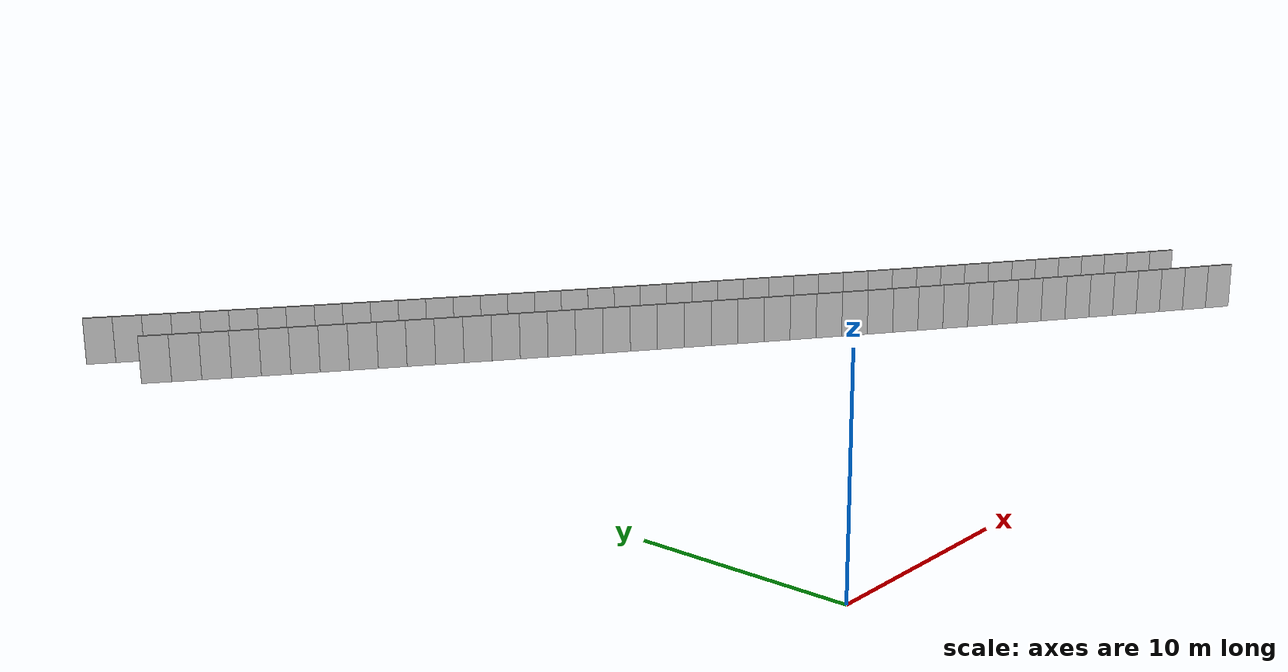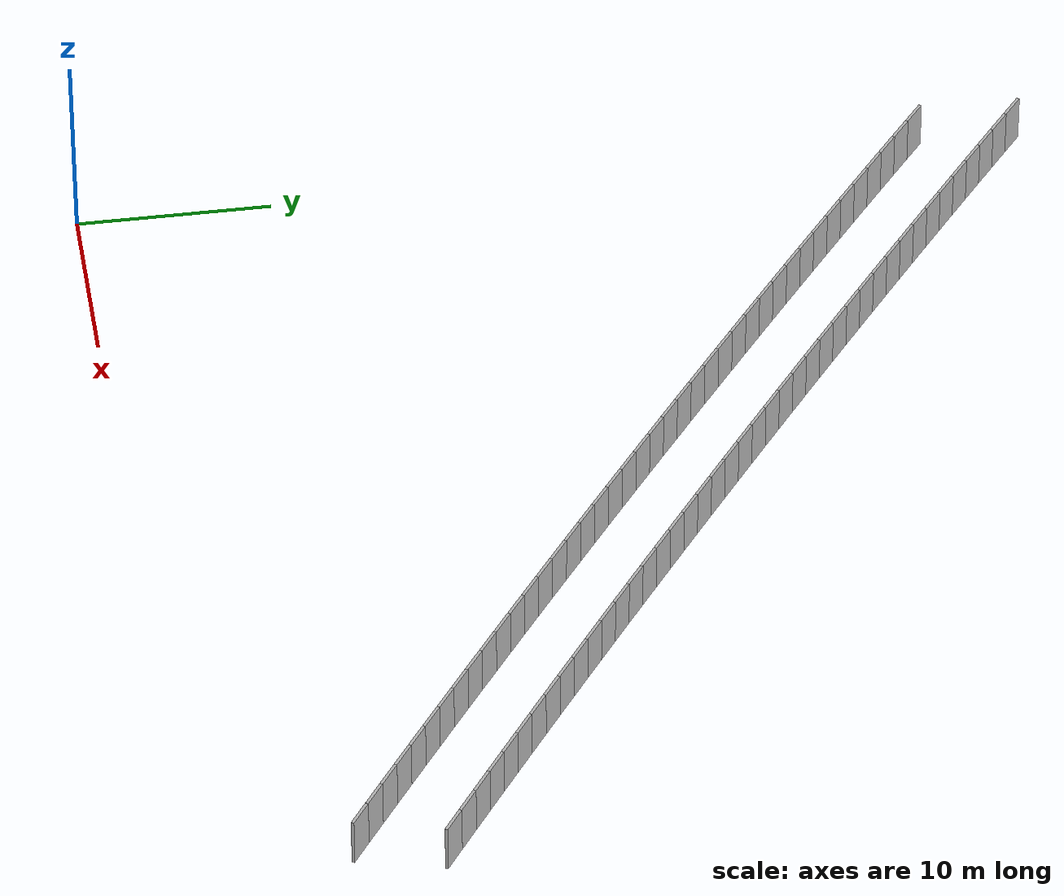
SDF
<?xml version="1.0" ?>
<sdf version="1.6">
  <model name="sps_1107">
    <pose frame="">0 0 0 0 -0 0</pose>
    <static>1</static>
    <self_collide>0</self_collide>
    <allow_auto_disable>0</allow_auto_disable>
    <link name="Wall8591">
      <kinematic>0</kinematic>
      <gravity>1</gravity>
      <self_collide>0</self_collide>
      <collision name="collision">
        <geometry>
          <box>
            <size>1.49901 0.15 2.5</size>
          </box>
        </geometry>
        <pose frame="">0 0 0 0 -0 0</pose>
      </collision>
      <visual name="visual">
        <geometry>
          <box>
            <size>1.49901 0.15 2.5</size>
          </box>
        </geometry>
        <pose frame="">0 0 0 0 -0 0</pose>
        <cast_shadows>1</cast_shadows>
        <transparency>0.0</transparency>
      </visual>
      <pose frame="">0.44506 43.3343 1.25 0 0 -0.661132</pose>
    </link>
    <link name="Wall8592">
      <kinematic>0</kinematic>
      <gravity>1</gravity>
      <self_collide>0</self_collide>
      <collision name="collision">
        <geometry>
          <box>
            <size>1.49874 0.15 2.5</size>
          </box>
        </geometry>
        <pose frame="">0 0 0 0 -0 0</pose>
      </collision>
      <visual name="visual">
        <geometry>
          <box>
            <size>1.49874 0.15 2.5</size>
          </box>
        </geometry>
        <pose frame="">0 0 0 0 -0 0</pose>
        <cast_shadows>1</cast_shadows>
        <transparency>0.0</transparency>
      </visual>
      <pose frame="">1.62884 42.4149 1.25 0 0 -0.659572</pose>
    </link>
    <link name="Wall8593">
      <kinematic>0</kinematic>
      <gravity>1</gravity>
      <self_collide>0</self_collide>
      <collision name="collision">
        <geometry>
          <box>
            <size>1.49896 0.15 2.5</size>
          </box>
        </geometry>
        <pose frame="">0 0 0 0 -0 0</pose>
      </collision>
      <visual name="visual">
        <geometry>
          <box>
            <size>1.49896 0.15 2.5</size>
          </box>
        </geometry>
        <pose frame="">0 0 0 0 -0 0</pose>
        <cast_shadows>1</cast_shadows>
        <transparency>0.0</transparency>
      </visual>
      <pose frame="">2.81405 41.4974 1.25 0 0 -0.657965</pose>
    </link>
    <link name="Wall8594">
      <kinematic>0</kinematic>
      <gravity>1</gravity>
      <self_collide>0</self_collide>
      <collision name="collision">
        <geometry>
          <box>
            <size>1.49905 0.15 2.5</size>
          </box>
        </geometry>
        <pose frame="">0 0 0 0 -0 0</pose>
      </collision>
      <visual name="visual">
        <geometry>
          <box>
            <size>1.49905 0.15 2.5</size>
          </box>
        </geometry>
        <pose frame="">0 0 0 0 -0 0</pose>
        <cast_shadows>1</cast_shadows>
        <transparency>0.0</transparency>
      </visual>
      <pose frame="">4.00085 40.5817 1.25 0 0 -0.656376</pose>
    </link>
    <link name="Wall8595">
      <kinematic>0</kinematic>
      <gravity>1</gravity>
      <self_collide>0</self_collide>
      <collision name="collision">
        <geometry>
          <box>
            <size>1.49898 0.15 2.5</size>
          </box>
        </geometry>
        <pose frame="">0 0 0 0 -0 0</pose>
      </collision>
      <visual name="visual">
        <geometry>
          <box>
            <size>1.49898 0.15 2.5</size>
          </box>
        </geometry>
        <pose frame="">0 0 0 0 -0 0</pose>
        <cast_shadows>1</cast_shadows>
        <transparency>0.0</transparency>
      </visual>
      <pose frame="">5.18914 39.6679 1.25 0 0 -0.654715</pose>
    </link>
    <link name="Wall8596">
      <kinematic>0</kinematic>
      <gravity>1</gravity>
      <self_collide>0</self_collide>
      <collision name="collision">
        <geometry>
          <box>
            <size>1.49902 0.15 2.5</size>
          </box>
        </geometry>
        <pose frame="">0 0 0 0 -0 0</pose>
      </collision>
      <visual name="visual">
        <geometry>
          <box>
            <size>1.49902 0.15 2.5</size>
          </box>
        </geometry>
        <pose frame="">0 0 0 0 -0 0</pose>
        <cast_shadows>1</cast_shadows>
        <transparency>0.0</transparency>
      </visual>
      <pose frame="">6.37887 38.756 1.25 0 0 -0.653208</pose>
    </link>
    <link name="Wall8597">
      <kinematic>0</kinematic>
      <gravity>1</gravity>
      <self_collide>0</self_collide>
      <collision name="collision">
        <geometry>
          <box>
            <size>1.49898 0.15 2.5</size>
          </box>
        </geometry>
        <pose frame="">0 0 0 0 -0 0</pose>
      </collision>
      <visual name="visual">
        <geometry>
          <box>
            <size>1.49898 0.15 2.5</size>
          </box>
        </geometry>
        <pose frame="">0 0 0 0 -0 0</pose>
        <cast_shadows>1</cast_shadows>
        <transparency>0.0</transparency>
      </visual>
      <pose frame="">7.56997 37.8459 1.25 0 0 -0.651694</pose>
    </link>
    <link name="Wall8598">
      <kinematic>0</kinematic>
      <gravity>1</gravity>
      <self_collide>0</self_collide>
      <collision name="collision">
        <geometry>
          <box>
            <size>1.49891 0.15 2.5</size>
          </box>
        </geometry>
        <pose frame="">0 0 0 0 -0 0</pose>
      </collision>
      <visual name="visual">
        <geometry>
          <box>
            <size>1.49891 0.15 2.5</size>
          </box>
        </geometry>
        <pose frame="">0 0 0 0 -0 0</pose>
        <cast_shadows>1</cast_shadows>
        <transparency>0.0</transparency>
      </visual>
      <pose frame="">8.76244 36.9377 1.25 0 0 -0.65009</pose>
    </link>
    <link name="Wall8599">
      <kinematic>0</kinematic>
      <gravity>1</gravity>
      <self_collide>0</self_collide>
      <collision name="collision">
        <geometry>
          <box>
            <size>1.49866 0.15 2.5</size>
          </box>
        </geometry>
        <pose frame="">0 0 0 0 -0 0</pose>
      </collision>
      <visual name="visual">
        <geometry>
          <box>
            <size>1.49866 0.15 2.5</size>
          </box>
        </geometry>
        <pose frame="">0 0 0 0 -0 0</pose>
        <cast_shadows>1</cast_shadows>
        <transparency>0.0</transparency>
      </visual>
      <pose frame="">9.95623 36.0315 1.25 0 0 -0.648527</pose>
    </link>
    <link name="Wall8600">
      <kinematic>0</kinematic>
      <gravity>1</gravity>
      <self_collide>0</self_collide>
      <collision name="collision">
        <geometry>
          <box>
            <size>1.49913 0.15 2.5</size>
          </box>
        </geometry>
        <pose frame="">0 0 0 0 -0 0</pose>
      </collision>
      <visual name="visual">
        <geometry>
          <box>
            <size>1.49913 0.15 2.5</size>
          </box>
        </geometry>
        <pose frame="">0 0 0 0 -0 0</pose>
        <cast_shadows>1</cast_shadows>
        <transparency>0.0</transparency>
      </visual>
      <pose frame="">11.1515 35.1271 1.25 0 0 -0.646913</pose>
    </link>
    <link name="Wall8601">
      <kinematic>0</kinematic>
      <gravity>1</gravity>
      <self_collide>0</self_collide>
      <collision name="collision">
        <geometry>
          <box>
            <size>1.49892 0.15 2.5</size>
          </box>
        </geometry>
        <pose frame="">0 0 0 0 -0 0</pose>
      </collision>
      <visual name="visual">
        <geometry>
          <box>
            <size>1.49892 0.15 2.5</size>
          </box>
        </geometry>
        <pose frame="">0 0 0 0 -0 0</pose>
        <cast_shadows>1</cast_shadows>
        <transparency>0.0</transparency>
      </visual>
      <pose frame="">12.3484 34.2246 1.25 0 0 -0.645236</pose>
    </link>
    <link name="Wall8602">
      <kinematic>0</kinematic>
      <gravity>1</gravity>
      <self_collide>0</self_collide>
      <collision name="collision">
        <geometry>
          <box>
            <size>1.4991 0.15 2.5</size>
          </box>
        </geometry>
        <pose frame="">0 0 0 0 -0 0</pose>
      </collision>
      <visual name="visual">
        <geometry>
          <box>
            <size>1.4991 0.15 2.5</size>
          </box>
        </geometry>
        <pose frame="">0 0 0 0 -0 0</pose>
        <cast_shadows>1</cast_shadows>
        <transparency>0.0</transparency>
      </visual>
      <pose frame="">13.5467 33.324 1.25 0 0 -0.64377</pose>
    </link>
    <link name="Wall8603">
      <kinematic>0</kinematic>
      <gravity>1</gravity>
      <self_collide>0</self_collide>
      <collision name="collision">
        <geometry>
          <box>
            <size>1.49871 0.15 2.5</size>
          </box>
        </geometry>
        <pose frame="">0 0 0 0 -0 0</pose>
      </collision>
      <visual name="visual">
        <geometry>
          <box>
            <size>1.49871 0.15 2.5</size>
          </box>
        </geometry>
        <pose frame="">0 0 0 0 -0 0</pose>
        <cast_shadows>1</cast_shadows>
        <transparency>0.0</transparency>
      </visual>
      <pose frame="">14.7464 32.4253 1.25 0 0 -0.642133</pose>
    </link>
    <link name="Wall8604">
      <kinematic>0</kinematic>
      <gravity>1</gravity>
      <self_collide>0</self_collide>
      <collision name="collision">
        <geometry>
          <box>
            <size>1.49892 0.15 2.5</size>
          </box>
        </geometry>
        <pose frame="">0 0 0 0 -0 0</pose>
      </collision>
      <visual name="visual">
        <geometry>
          <box>
            <size>1.49892 0.15 2.5</size>
          </box>
        </geometry>
        <pose frame="">0 0 0 0 -0 0</pose>
        <cast_shadows>1</cast_shadows>
        <transparency>0.0</transparency>
      </visual>
      <pose frame="">15.9473 31.5286 1.25 0 0 -0.640553</pose>
    </link>
    <link name="Wall8605">
      <kinematic>0</kinematic>
      <gravity>1</gravity>
      <self_collide>0</self_collide>
      <collision name="collision">
        <geometry>
          <box>
            <size>1.49895 0.15 2.5</size>
          </box>
        </geometry>
        <pose frame="">0 0 0 0 -0 0</pose>
      </collision>
      <visual name="visual">
        <geometry>
          <box>
            <size>1.49895 0.15 2.5</size>
          </box>
        </geometry>
        <pose frame="">0 0 0 0 -0 0</pose>
        <cast_shadows>1</cast_shadows>
        <transparency>0.0</transparency>
      </visual>
      <pose frame="">17.1498 30.6337 1.25 0 0 -0.639014</pose>
    </link>
    <link name="Wall8606">
      <kinematic>0</kinematic>
      <gravity>1</gravity>
      <self_collide>0</self_collide>
      <collision name="collision">
        <geometry>
          <box>
            <size>1.49897 0.15 2.5</size>
          </box>
        </geometry>
        <pose frame="">0 0 0 0 -0 0</pose>
      </collision>
      <visual name="visual">
        <geometry>
          <box>
            <size>1.49897 0.15 2.5</size>
          </box>
        </geometry>
        <pose frame="">0 0 0 0 -0 0</pose>
        <cast_shadows>1</cast_shadows>
        <transparency>0.0</transparency>
      </visual>
      <pose frame="">18.3538 29.7407 1.25 0 0 -0.637385</pose>
    </link>
    <link name="Wall8607">
      <kinematic>0</kinematic>
      <gravity>1</gravity>
      <self_collide>0</self_collide>
      <collision name="collision">
        <geometry>
          <box>
            <size>1.49896 0.15 2.5</size>
          </box>
        </geometry>
        <pose frame="">0 0 0 0 -0 0</pose>
      </collision>
      <visual name="visual">
        <geometry>
          <box>
            <size>1.49896 0.15 2.5</size>
          </box>
        </geometry>
        <pose frame="">0 0 0 0 -0 0</pose>
        <cast_shadows>1</cast_shadows>
        <transparency>0.0</transparency>
      </visual>
      <pose frame="">19.5591 28.8496 1.25 0 0 -0.63587</pose>
    </link>
    <link name="Wall8608">
      <kinematic>0</kinematic>
      <gravity>1</gravity>
      <self_collide>0</self_collide>
      <collision name="collision">
        <geometry>
          <box>
            <size>1.49889 0.15 2.5</size>
          </box>
        </geometry>
        <pose frame="">0 0 0 0 -0 0</pose>
      </collision>
      <visual name="visual">
        <geometry>
          <box>
            <size>1.49889 0.15 2.5</size>
          </box>
        </geometry>
        <pose frame="">0 0 0 0 -0 0</pose>
        <cast_shadows>1</cast_shadows>
        <transparency>0.0</transparency>
      </visual>
      <pose frame="">20.7658 27.9604 1.25 0 0 -0.634233</pose>
    </link>
    <link name="Wall8609">
      <kinematic>0</kinematic>
      <gravity>1</gravity>
      <self_collide>0</self_collide>
      <collision name="collision">
        <geometry>
          <box>
            <size>1.49912 0.15 2.5</size>
          </box>
        </geometry>
        <pose frame="">0 0 0 0 -0 0</pose>
      </collision>
      <visual name="visual">
        <geometry>
          <box>
            <size>1.49912 0.15 2.5</size>
          </box>
        </geometry>
        <pose frame="">0 0 0 0 -0 0</pose>
        <cast_shadows>1</cast_shadows>
        <transparency>0.0</transparency>
      </visual>
      <pose frame="">21.974 27.0731 1.25 0 0 -0.632655</pose>
    </link>
    <link name="Wall8610">
      <kinematic>0</kinematic>
      <gravity>1</gravity>
      <self_collide>0</self_collide>
      <collision name="collision">
        <geometry>
          <box>
            <size>1.49892 0.15 2.5</size>
          </box>
        </geometry>
        <pose frame="">0 0 0 0 -0 0</pose>
      </collision>
      <visual name="visual">
        <geometry>
          <box>
            <size>1.49892 0.15 2.5</size>
          </box>
        </geometry>
        <pose frame="">0 0 0 0 -0 0</pose>
        <cast_shadows>1</cast_shadows>
        <transparency>0.0</transparency>
      </visual>
      <pose frame="">23.1836 26.1877 1.25 0 0 -0.63109</pose>
    </link>
    <link name="Wall8611">
      <kinematic>0</kinematic>
      <gravity>1</gravity>
      <self_collide>0</self_collide>
      <collision name="collision">
        <geometry>
          <box>
            <size>1.49901 0.15 2.5</size>
          </box>
        </geometry>
        <pose frame="">0 0 0 0 -0 0</pose>
      </collision>
      <visual name="visual">
        <geometry>
          <box>
            <size>1.49901 0.15 2.5</size>
          </box>
        </geometry>
        <pose frame="">0 0 0 0 -0 0</pose>
        <cast_shadows>1</cast_shadows>
        <transparency>0.0</transparency>
      </visual>
      <pose frame="">24.3945 25.3042 1.25 0 0 -0.629584</pose>
    </link>
    <link name="Wall8612">
      <kinematic>0</kinematic>
      <gravity>1</gravity>
      <self_collide>0</self_collide>
      <collision name="collision">
        <geometry>
          <box>
            <size>1.49882 0.15 2.5</size>
          </box>
        </geometry>
        <pose frame="">0 0 0 0 -0 0</pose>
      </collision>
      <visual name="visual">
        <geometry>
          <box>
            <size>1.49882 0.15 2.5</size>
          </box>
        </geometry>
        <pose frame="">0 0 0 0 -0 0</pose>
        <cast_shadows>1</cast_shadows>
        <transparency>0.0</transparency>
      </visual>
      <pose frame="">25.6068 24.4227 1.25 0 0 -0.627814</pose>
    </link>
    <link name="Wall8613">
      <kinematic>0</kinematic>
      <gravity>1</gravity>
      <self_collide>0</self_collide>
      <collision name="collision">
        <geometry>
          <box>
            <size>1.49897 0.15 2.5</size>
          </box>
        </geometry>
        <pose frame="">0 0 0 0 -0 0</pose>
      </collision>
      <visual name="visual">
        <geometry>
          <box>
            <size>1.49897 0.15 2.5</size>
          </box>
        </geometry>
        <pose frame="">0 0 0 0 -0 0</pose>
        <cast_shadows>1</cast_shadows>
        <transparency>0.0</transparency>
      </visual>
      <pose frame="">26.8205 23.5431 1.25 0 0 -0.626431</pose>
    </link>
    <link name="Wall8614">
      <kinematic>0</kinematic>
      <gravity>1</gravity>
      <self_collide>0</self_collide>
      <collision name="collision">
        <geometry>
          <box>
            <size>1.49891 0.15 2.5</size>
          </box>
        </geometry>
        <pose frame="">0 0 0 0 -0 0</pose>
      </collision>
      <visual name="visual">
        <geometry>
          <box>
            <size>1.49891 0.15 2.5</size>
          </box>
        </geometry>
        <pose frame="">0 0 0 0 -0 0</pose>
        <cast_shadows>1</cast_shadows>
        <transparency>0.0</transparency>
      </visual>
      <pose frame="">28.0355 22.6654 1.25 0 0 -0.624704</pose>
    </link>
    <link name="Wall8615">
      <kinematic>0</kinematic>
      <gravity>1</gravity>
      <self_collide>0</self_collide>
      <collision name="collision">
        <geometry>
          <box>
            <size>1.49889 0.15 2.5</size>
          </box>
        </geometry>
        <pose frame="">0 0 0 0 -0 0</pose>
      </collision>
      <visual name="visual">
        <geometry>
          <box>
            <size>1.49889 0.15 2.5</size>
          </box>
        </geometry>
        <pose frame="">0 0 0 0 -0 0</pose>
        <cast_shadows>1</cast_shadows>
        <transparency>0.0</transparency>
      </visual>
      <pose frame="">29.2519 21.7896 1.25 0 0 -0.623359</pose>
    </link>
    <link name="Wall8616">
      <kinematic>0</kinematic>
      <gravity>1</gravity>
      <self_collide>0</self_collide>
      <collision name="collision">
        <geometry>
          <box>
            <size>1.49905 0.15 2.5</size>
          </box>
        </geometry>
        <pose frame="">0 0 0 0 -0 0</pose>
      </collision>
      <visual name="visual">
        <geometry>
          <box>
            <size>1.49905 0.15 2.5</size>
          </box>
        </geometry>
        <pose frame="">0 0 0 0 -0 0</pose>
        <cast_shadows>1</cast_shadows>
        <transparency>0.0</transparency>
      </visual>
      <pose frame="">30.4697 20.9156 1.25 0 0 -0.621627</pose>
    </link>
    <link name="Wall8617">
      <kinematic>0</kinematic>
      <gravity>1</gravity>
      <self_collide>0</self_collide>
      <collision name="collision">
        <geometry>
          <box>
            <size>1.49897 0.15 2.5</size>
          </box>
        </geometry>
        <pose frame="">0 0 0 0 -0 0</pose>
      </collision>
      <visual name="visual">
        <geometry>
          <box>
            <size>1.49897 0.15 2.5</size>
          </box>
        </geometry>
        <pose frame="">0 0 0 0 -0 0</pose>
        <cast_shadows>1</cast_shadows>
        <transparency>0.0</transparency>
      </visual>
      <pose frame="">31.689 20.0436 1.25 0 0 -0.620013</pose>
    </link>
    <link name="Wall8618">
      <kinematic>0</kinematic>
      <gravity>1</gravity>
      <self_collide>0</self_collide>
      <collision name="collision">
        <geometry>
          <box>
            <size>1.49888 0.15 2.5</size>
          </box>
        </geometry>
        <pose frame="">0 0 0 0 -0 0</pose>
      </collision>
      <visual name="visual">
        <geometry>
          <box>
            <size>1.49888 0.15 2.5</size>
          </box>
        </geometry>
        <pose frame="">0 0 0 0 -0 0</pose>
        <cast_shadows>1</cast_shadows>
        <transparency>0.0</transparency>
      </visual>
      <pose frame="">32.9097 19.1736 1.25 0 0 -0.618455</pose>
    </link>
    <link name="Wall8619">
      <kinematic>0</kinematic>
      <gravity>1</gravity>
      <self_collide>0</self_collide>
      <collision name="collision">
        <geometry>
          <box>
            <size>1.49896 0.15 2.5</size>
          </box>
        </geometry>
        <pose frame="">0 0 0 0 -0 0</pose>
      </collision>
      <visual name="visual">
        <geometry>
          <box>
            <size>1.49896 0.15 2.5</size>
          </box>
        </geometry>
        <pose frame="">0 0 0 0 -0 0</pose>
        <cast_shadows>1</cast_shadows>
        <transparency>0.0</transparency>
      </visual>
      <pose frame="">34.1317 18.3056 1.25 0 0 -0.61677</pose>
    </link>
    <link name="Wall8620">
      <kinematic>0</kinematic>
      <gravity>1</gravity>
      <self_collide>0</self_collide>
      <collision name="collision">
        <geometry>
          <box>
            <size>1.49905 0.15 2.5</size>
          </box>
        </geometry>
        <pose frame="">0 0 0 0 -0 0</pose>
      </collision>
      <visual name="visual">
        <geometry>
          <box>
            <size>1.49905 0.15 2.5</size>
          </box>
        </geometry>
        <pose frame="">0 0 0 0 -0 0</pose>
        <cast_shadows>1</cast_shadows>
        <transparency>0.0</transparency>
      </visual>
      <pose frame="">35.3552 17.4395 1.25 0 0 -0.615232</pose>
    </link>
    <link name="Wall8621">
      <kinematic>0</kinematic>
      <gravity>1</gravity>
      <self_collide>0</self_collide>
      <collision name="collision">
        <geometry>
          <box>
            <size>1.49877 0.15 2.5</size>
          </box>
        </geometry>
        <pose frame="">0 0 0 0 -0 0</pose>
      </collision>
      <visual name="visual">
        <geometry>
          <box>
            <size>1.49877 0.15 2.5</size>
          </box>
        </geometry>
        <pose frame="">0 0 0 0 -0 0</pose>
        <cast_shadows>1</cast_shadows>
        <transparency>0.0</transparency>
      </visual>
      <pose frame="">36.5799 16.5753 1.25 0 0 -0.613769</pose>
    </link>
    <link name="Wall8622">
      <kinematic>0</kinematic>
      <gravity>1</gravity>
      <self_collide>0</self_collide>
      <collision name="collision">
        <geometry>
          <box>
            <size>1.49901 0.15 2.5</size>
          </box>
        </geometry>
        <pose frame="">0 0 0 0 -0 0</pose>
      </collision>
      <visual name="visual">
        <geometry>
          <box>
            <size>1.49901 0.15 2.5</size>
          </box>
        </geometry>
        <pose frame="">0 0 0 0 -0 0</pose>
        <cast_shadows>1</cast_shadows>
        <transparency>0.0</transparency>
      </visual>
      <pose frame="">37.8059 15.713 1.25 0 0 -0.61216</pose>
    </link>
    <link name="Wall8623">
      <kinematic>0</kinematic>
      <gravity>1</gravity>
      <self_collide>0</self_collide>
      <collision name="collision">
        <geometry>
          <box>
            <size>1.4987 0.15 2.5</size>
          </box>
        </geometry>
        <pose frame="">0 0 0 0 -0 0</pose>
      </collision>
      <visual name="visual">
        <geometry>
          <box>
            <size>1.4987 0.15 2.5</size>
          </box>
        </geometry>
        <pose frame="">0 0 0 0 -0 0</pose>
        <cast_shadows>1</cast_shadows>
        <transparency>0.0</transparency>
      </visual>
      <pose frame="">39.0333 14.8527 1.25 0 0 -0.610516</pose>
    </link>
    <link name="Wall8624">
      <kinematic>0</kinematic>
      <gravity>1</gravity>
      <self_collide>0</self_collide>
      <collision name="collision">
        <geometry>
          <box>
            <size>1.49915 0.15 2.5</size>
          </box>
        </geometry>
        <pose frame="">0 0 0 0 -0 0</pose>
      </collision>
      <visual name="visual">
        <geometry>
          <box>
            <size>1.49915 0.15 2.5</size>
          </box>
        </geometry>
        <pose frame="">0 0 0 0 -0 0</pose>
        <cast_shadows>1</cast_shadows>
        <transparency>0.0</transparency>
      </visual>
      <pose frame="">40.262 13.9943 1.25 0 0 -0.609018</pose>
    </link>
    <link name="Wall8625">
      <kinematic>0</kinematic>
      <gravity>1</gravity>
      <self_collide>0</self_collide>
      <collision name="collision">
        <geometry>
          <box>
            <size>1.49884 0.15 2.5</size>
          </box>
        </geometry>
        <pose frame="">0 0 0 0 -0 0</pose>
      </collision>
      <visual name="visual">
        <geometry>
          <box>
            <size>1.49884 0.15 2.5</size>
          </box>
        </geometry>
        <pose frame="">0 0 0 0 -0 0</pose>
        <cast_shadows>1</cast_shadows>
        <transparency>0.0</transparency>
      </visual>
      <pose frame="">41.4922 13.1378 1.25 0 0 -0.607373</pose>
    </link>
    <link name="Wall8626">
      <kinematic>0</kinematic>
      <gravity>1</gravity>
      <self_collide>0</self_collide>
      <collision name="collision">
        <geometry>
          <box>
            <size>1.49914 0.15 2.5</size>
          </box>
        </geometry>
        <pose frame="">0 0 0 0 -0 0</pose>
      </collision>
      <visual name="visual">
        <geometry>
          <box>
            <size>1.49914 0.15 2.5</size>
          </box>
        </geometry>
        <pose frame="">0 0 0 0 -0 0</pose>
        <cast_shadows>1</cast_shadows>
        <transparency>0.0</transparency>
      </visual>
      <pose frame="">42.7237 12.2832 1.25 0 0 -0.605946</pose>
    </link>
    <link name="Wall8627">
      <kinematic>0</kinematic>
      <gravity>1</gravity>
      <self_collide>0</self_collide>
      <collision name="collision">
        <geometry>
          <box>
            <size>1.49871 0.15 2.5</size>
          </box>
        </geometry>
        <pose frame="">0 0 0 0 -0 0</pose>
      </collision>
      <visual name="visual">
        <geometry>
          <box>
            <size>1.49871 0.15 2.5</size>
          </box>
        </geometry>
        <pose frame="">0 0 0 0 -0 0</pose>
        <cast_shadows>1</cast_shadows>
        <transparency>0.0</transparency>
      </visual>
      <pose frame="">43.9566 11.4306 1.25 0 0 -0.604167</pose>
    </link>
    <link name="Wall8628">
      <kinematic>0</kinematic>
      <gravity>1</gravity>
      <self_collide>0</self_collide>
      <collision name="collision">
        <geometry>
          <box>
            <size>1.49901 0.15 2.5</size>
          </box>
        </geometry>
        <pose frame="">0 0 0 0 -0 0</pose>
      </collision>
      <visual name="visual">
        <geometry>
          <box>
            <size>1.49901 0.15 2.5</size>
          </box>
        </geometry>
        <pose frame="">0 0 0 0 -0 0</pose>
        <cast_shadows>1</cast_shadows>
        <transparency>0.0</transparency>
      </visual>
      <pose frame="">45.1908 10.5801 1.25 0 0 -0.602594</pose>
    </link>
    <link name="Wall8629">
      <kinematic>0</kinematic>
      <gravity>1</gravity>
      <self_collide>0</self_collide>
      <collision name="collision">
        <geometry>
          <box>
            <size>1.49898 0.15 2.5</size>
          </box>
        </geometry>
        <pose frame="">0 0 0 0 -0 0</pose>
      </collision>
      <visual name="visual">
        <geometry>
          <box>
            <size>1.49898 0.15 2.5</size>
          </box>
        </geometry>
        <pose frame="">0 0 0 0 -0 0</pose>
        <cast_shadows>1</cast_shadows>
        <transparency>0.0</transparency>
      </visual>
      <pose frame="">46.4264 9.7314 1.25 0 0 -0.601126</pose>
    </link>
    <link name="Wall8630">
      <kinematic>0</kinematic>
      <gravity>1</gravity>
      <self_collide>0</self_collide>
      <collision name="collision">
        <geometry>
          <box>
            <size>1.49888 0.15 2.5</size>
          </box>
        </geometry>
        <pose frame="">0 0 0 0 -0 0</pose>
      </collision>
      <visual name="visual">
        <geometry>
          <box>
            <size>1.49888 0.15 2.5</size>
          </box>
        </geometry>
        <pose frame="">0 0 0 0 -0 0</pose>
        <cast_shadows>1</cast_shadows>
        <transparency>0.0</transparency>
      </visual>
      <pose frame="">47.6632 8.8846 1.25 0 0 -0.59959</pose>
    </link>
    <link name="Wall8631">
      <kinematic>0</kinematic>
      <gravity>1</gravity>
      <self_collide>0</self_collide>
      <collision name="collision">
        <geometry>
          <box>
            <size>1.49901 0.15 2.5</size>
          </box>
        </geometry>
        <pose frame="">0 0 0 0 -0 0</pose>
      </collision>
      <visual name="visual">
        <geometry>
          <box>
            <size>1.49901 0.15 2.5</size>
          </box>
        </geometry>
        <pose frame="">0 0 0 0 -0 0</pose>
        <cast_shadows>1</cast_shadows>
        <transparency>0.0</transparency>
      </visual>
      <pose frame="">48.9014 8.03978 1.25 0 0 -0.597907</pose>
    </link>
    <link name="Wall9670">
      <kinematic>0</kinematic>
      <gravity>1</gravity>
      <self_collide>0</self_collide>
      <collision name="collision">
        <geometry>
          <box>
            <size>1.49261 0.15 2.5</size>
          </box>
        </geometry>
        <pose frame="">0 0 0 0 -0 0</pose>
      </collision>
      <visual name="visual">
        <geometry>
          <box>
            <size>1.49261 0.15 2.5</size>
          </box>
        </geometry>
        <pose frame="">0 0 0 0 -0 0</pose>
        <cast_shadows>1</cast_shadows>
        <transparency>0.0</transparency>
      </visual>
      <pose frame="">0.633842 48.4388 1.25 0 0 -0.664267</pose>
    </link>
    <link name="Wall9671">
      <kinematic>0</kinematic>
      <gravity>1</gravity>
      <self_collide>0</self_collide>
      <collision name="collision">
        <geometry>
          <box>
            <size>1.49232 0.15 2.5</size>
          </box>
        </geometry>
        <pose frame="">0 0 0 0 -0 0</pose>
      </collision>
      <visual name="visual">
        <geometry>
          <box>
            <size>1.49232 0.15 2.5</size>
          </box>
        </geometry>
        <pose frame="">0 0 0 0 -0 0</pose>
        <cast_shadows>1</cast_shadows>
        <transparency>0.0</transparency>
      </visual>
      <pose frame="">1.80965 47.5196 1.25 0 0 -0.662758</pose>
    </link>
    <link name="Wall9672">
      <kinematic>0</kinematic>
      <gravity>1</gravity>
      <self_collide>0</self_collide>
      <collision name="collision">
        <geometry>
          <box>
            <size>1.49244 0.15 2.5</size>
          </box>
        </geometry>
        <pose frame="">0 0 0 0 -0 0</pose>
      </collision>
      <visual name="visual">
        <geometry>
          <box>
            <size>1.49244 0.15 2.5</size>
          </box>
        </geometry>
        <pose frame="">0 0 0 0 -0 0</pose>
        <cast_shadows>1</cast_shadows>
        <transparency>0.0</transparency>
      </visual>
      <pose frame="">2.98684 46.6023 1.25 0 0 -0.661136</pose>
    </link>
    <link name="Wall9673">
      <kinematic>0</kinematic>
      <gravity>1</gravity>
      <self_collide>0</self_collide>
      <collision name="collision">
        <geometry>
          <box>
            <size>1.4924 0.15 2.5</size>
          </box>
        </geometry>
        <pose frame="">0 0 0 0 -0 0</pose>
      </collision>
      <visual name="visual">
        <geometry>
          <box>
            <size>1.4924 0.15 2.5</size>
          </box>
        </geometry>
        <pose frame="">0 0 0 0 -0 0</pose>
        <cast_shadows>1</cast_shadows>
        <transparency>0.0</transparency>
      </visual>
      <pose frame="">4.16555 45.6869 1.25 0 0 -0.659501</pose>
    </link>
    <link name="Wall9674">
      <kinematic>0</kinematic>
      <gravity>1</gravity>
      <self_collide>0</self_collide>
      <collision name="collision">
        <geometry>
          <box>
            <size>1.49223 0.15 2.5</size>
          </box>
        </geometry>
        <pose frame="">0 0 0 0 -0 0</pose>
      </collision>
      <visual name="visual">
        <geometry>
          <box>
            <size>1.49223 0.15 2.5</size>
          </box>
        </geometry>
        <pose frame="">0 0 0 0 -0 0</pose>
        <cast_shadows>1</cast_shadows>
        <transparency>0.0</transparency>
      </visual>
      <pose frame="">5.34566 44.7735 1.25 0 0 -0.657883</pose>
    </link>
    <link name="Wall9675">
      <kinematic>0</kinematic>
      <gravity>1</gravity>
      <self_collide>0</self_collide>
      <collision name="collision">
        <geometry>
          <box>
            <size>1.49248 0.15 2.5</size>
          </box>
        </geometry>
        <pose frame="">0 0 0 0 -0 0</pose>
      </collision>
      <visual name="visual">
        <geometry>
          <box>
            <size>1.49248 0.15 2.5</size>
          </box>
        </geometry>
        <pose frame="">0 0 0 0 -0 0</pose>
        <cast_shadows>1</cast_shadows>
        <transparency>0.0</transparency>
      </visual>
      <pose frame="">6.52724 43.8619 1.25 0 0 -0.656359</pose>
    </link>
    <link name="Wall9676">
      <kinematic>0</kinematic>
      <gravity>1</gravity>
      <self_collide>0</self_collide>
      <collision name="collision">
        <geometry>
          <box>
            <size>1.49242 0.15 2.5</size>
          </box>
        </geometry>
        <pose frame="">0 0 0 0 -0 0</pose>
      </collision>
      <visual name="visual">
        <geometry>
          <box>
            <size>1.49242 0.15 2.5</size>
          </box>
        </geometry>
        <pose frame="">0 0 0 0 -0 0</pose>
        <cast_shadows>1</cast_shadows>
        <transparency>0.0</transparency>
      </visual>
      <pose frame="">7.71026 42.952 1.25 0 0 -0.654895</pose>
    </link>
    <link name="Wall9677">
      <kinematic>0</kinematic>
      <gravity>1</gravity>
      <self_collide>0</self_collide>
      <collision name="collision">
        <geometry>
          <box>
            <size>1.49244 0.15 2.5</size>
          </box>
        </geometry>
        <pose frame="">0 0 0 0 -0 0</pose>
      </collision>
      <visual name="visual">
        <geometry>
          <box>
            <size>1.49244 0.15 2.5</size>
          </box>
        </geometry>
        <pose frame="">0 0 0 0 -0 0</pose>
        <cast_shadows>1</cast_shadows>
        <transparency>0.0</transparency>
      </visual>
      <pose frame="">8.89468 42.044 1.25 0 0 -0.653235</pose>
    </link>
    <link name="Wall9678">
      <kinematic>0</kinematic>
      <gravity>1</gravity>
      <self_collide>0</self_collide>
      <collision name="collision">
        <geometry>
          <box>
            <size>1.49241 0.15 2.5</size>
          </box>
        </geometry>
        <pose frame="">0 0 0 0 -0 0</pose>
      </collision>
      <visual name="visual">
        <geometry>
          <box>
            <size>1.49241 0.15 2.5</size>
          </box>
        </geometry>
        <pose frame="">0 0 0 0 -0 0</pose>
        <cast_shadows>1</cast_shadows>
        <transparency>0.0</transparency>
      </visual>
      <pose frame="">10.0806 41.1379 1.25 0 0 -0.651656</pose>
    </link>
    <link name="Wall9679">
      <kinematic>0</kinematic>
      <gravity>1</gravity>
      <self_collide>0</self_collide>
      <collision name="collision">
        <geometry>
          <box>
            <size>1.49234 0.15 2.5</size>
          </box>
        </geometry>
        <pose frame="">0 0 0 0 -0 0</pose>
      </collision>
      <visual name="visual">
        <geometry>
          <box>
            <size>1.49234 0.15 2.5</size>
          </box>
        </geometry>
        <pose frame="">0 0 0 0 -0 0</pose>
        <cast_shadows>1</cast_shadows>
        <transparency>0.0</transparency>
      </visual>
      <pose frame="">11.2678 40.2337 1.25 0 0 -0.650045</pose>
    </link>
    <link name="Wall9680">
      <kinematic>0</kinematic>
      <gravity>1</gravity>
      <self_collide>0</self_collide>
      <collision name="collision">
        <geometry>
          <box>
            <size>1.49239 0.15 2.5</size>
          </box>
        </geometry>
        <pose frame="">0 0 0 0 -0 0</pose>
      </collision>
      <visual name="visual">
        <geometry>
          <box>
            <size>1.49239 0.15 2.5</size>
          </box>
        </geometry>
        <pose frame="">0 0 0 0 -0 0</pose>
        <cast_shadows>1</cast_shadows>
        <transparency>0.0</transparency>
      </visual>
      <pose frame="">12.4565 39.3314 1.25 0 0 -0.648532</pose>
    </link>
    <link name="Wall9681">
      <kinematic>0</kinematic>
      <gravity>1</gravity>
      <self_collide>0</self_collide>
      <collision name="collision">
        <geometry>
          <box>
            <size>1.49249 0.15 2.5</size>
          </box>
        </geometry>
        <pose frame="">0 0 0 0 -0 0</pose>
      </collision>
      <visual name="visual">
        <geometry>
          <box>
            <size>1.49249 0.15 2.5</size>
          </box>
        </geometry>
        <pose frame="">0 0 0 0 -0 0</pose>
        <cast_shadows>1</cast_shadows>
        <transparency>0.0</transparency>
      </visual>
      <pose frame="">13.6468 38.431 1.25 0 0 -0.646789</pose>
    </link>
    <link name="Wall9682">
      <kinematic>0</kinematic>
      <gravity>1</gravity>
      <self_collide>0</self_collide>
      <collision name="collision">
        <geometry>
          <box>
            <size>1.49246 0.15 2.5</size>
          </box>
        </geometry>
        <pose frame="">0 0 0 0 -0 0</pose>
      </collision>
      <visual name="visual">
        <geometry>
          <box>
            <size>1.49246 0.15 2.5</size>
          </box>
        </geometry>
        <pose frame="">0 0 0 0 -0 0</pose>
        <cast_shadows>1</cast_shadows>
        <transparency>0.0</transparency>
      </visual>
      <pose frame="">14.8385 37.5325 1.25 0 0 -0.645268</pose>
    </link>
    <link name="Wall9683">
      <kinematic>0</kinematic>
      <gravity>1</gravity>
      <self_collide>0</self_collide>
      <collision name="collision">
        <geometry>
          <box>
            <size>1.49252 0.15 2.5</size>
          </box>
        </geometry>
        <pose frame="">0 0 0 0 -0 0</pose>
      </collision>
      <visual name="visual">
        <geometry>
          <box>
            <size>1.49252 0.15 2.5</size>
          </box>
        </geometry>
        <pose frame="">0 0 0 0 -0 0</pose>
        <cast_shadows>1</cast_shadows>
        <transparency>0.0</transparency>
      </visual>
      <pose frame="">16.0315 36.6358 1.25 0 0 -0.643755</pose>
    </link>
    <link name="Wall9684">
      <kinematic>0</kinematic>
      <gravity>1</gravity>
      <self_collide>0</self_collide>
      <collision name="collision">
        <geometry>
          <box>
            <size>1.49229 0.15 2.5</size>
          </box>
        </geometry>
        <pose frame="">0 0 0 0 -0 0</pose>
      </collision>
      <visual name="visual">
        <geometry>
          <box>
            <size>1.49229 0.15 2.5</size>
          </box>
        </geometry>
        <pose frame="">0 0 0 0 -0 0</pose>
        <cast_shadows>1</cast_shadows>
        <transparency>0.0</transparency>
      </visual>
      <pose frame="">17.2259 35.741 1.25 0 0 -0.642184</pose>
    </link>
    <link name="Wall9685">
      <kinematic>0</kinematic>
      <gravity>1</gravity>
      <self_collide>0</self_collide>
      <collision name="collision">
        <geometry>
          <box>
            <size>1.49246 0.15 2.5</size>
          </box>
        </geometry>
        <pose frame="">0 0 0 0 -0 0</pose>
      </collision>
      <visual name="visual">
        <geometry>
          <box>
            <size>1.49246 0.15 2.5</size>
          </box>
        </geometry>
        <pose frame="">0 0 0 0 -0 0</pose>
        <cast_shadows>1</cast_shadows>
        <transparency>0.0</transparency>
      </visual>
      <pose frame="">18.4217 34.8481 1.25 0 0 -0.640565</pose>
    </link>
    <link name="Wall9686">
      <kinematic>0</kinematic>
      <gravity>1</gravity>
      <self_collide>0</self_collide>
      <collision name="collision">
        <geometry>
          <box>
            <size>1.49228 0.15 2.5</size>
          </box>
        </geometry>
        <pose frame="">0 0 0 0 -0 0</pose>
      </collision>
      <visual name="visual">
        <geometry>
          <box>
            <size>1.49228 0.15 2.5</size>
          </box>
        </geometry>
        <pose frame="">0 0 0 0 -0 0</pose>
        <cast_shadows>1</cast_shadows>
        <transparency>0.0</transparency>
      </visual>
      <pose frame="">19.6189 33.9571 1.25 0 0 -0.639027</pose>
    </link>
    <link name="Wall9687">
      <kinematic>0</kinematic>
      <gravity>1</gravity>
      <self_collide>0</self_collide>
      <collision name="collision">
        <geometry>
          <box>
            <size>1.49246 0.15 2.5</size>
          </box>
        </geometry>
        <pose frame="">0 0 0 0 -0 0</pose>
      </collision>
      <visual name="visual">
        <geometry>
          <box>
            <size>1.49246 0.15 2.5</size>
          </box>
        </geometry>
        <pose frame="">0 0 0 0 -0 0</pose>
        <cast_shadows>1</cast_shadows>
        <transparency>0.0</transparency>
      </visual>
      <pose frame="">20.8176 33.068 1.25 0 0 -0.637408</pose>
    </link>
    <link name="Wall9688">
      <kinematic>0</kinematic>
      <gravity>1</gravity>
      <self_collide>0</self_collide>
      <collision name="collision">
        <geometry>
          <box>
            <size>1.49239 0.15 2.5</size>
          </box>
        </geometry>
        <pose frame="">0 0 0 0 -0 0</pose>
      </collision>
      <visual name="visual">
        <geometry>
          <box>
            <size>1.49239 0.15 2.5</size>
          </box>
        </geometry>
        <pose frame="">0 0 0 0 -0 0</pose>
        <cast_shadows>1</cast_shadows>
        <transparency>0.0</transparency>
      </visual>
      <pose frame="">22.0176 32.1807 1.25 0 0 -0.635968</pose>
    </link>
    <link name="Wall9689">
      <kinematic>0</kinematic>
      <gravity>1</gravity>
      <self_collide>0</self_collide>
      <collision name="collision">
        <geometry>
          <box>
            <size>1.49242 0.15 2.5</size>
          </box>
        </geometry>
        <pose frame="">0 0 0 0 -0 0</pose>
      </collision>
      <visual name="visual">
        <geometry>
          <box>
            <size>1.49242 0.15 2.5</size>
          </box>
        </geometry>
        <pose frame="">0 0 0 0 -0 0</pose>
        <cast_shadows>1</cast_shadows>
        <transparency>0.0</transparency>
      </visual>
      <pose frame="">23.219 31.2953 1.25 0 0 -0.634275</pose>
    </link>
    <link name="Wall9690">
      <kinematic>0</kinematic>
      <gravity>1</gravity>
      <self_collide>0</self_collide>
      <collision name="collision">
        <geometry>
          <box>
            <size>1.49241 0.15 2.5</size>
          </box>
        </geometry>
        <pose frame="">0 0 0 0 -0 0</pose>
      </collision>
      <visual name="visual">
        <geometry>
          <box>
            <size>1.49241 0.15 2.5</size>
          </box>
        </geometry>
        <pose frame="">0 0 0 0 -0 0</pose>
        <cast_shadows>1</cast_shadows>
        <transparency>0.0</transparency>
      </visual>
      <pose frame="">24.4218 30.4119 1.25 0 0 -0.632606</pose>
    </link>
    <link name="Wall9691">
      <kinematic>0</kinematic>
      <gravity>1</gravity>
      <self_collide>0</self_collide>
      <collision name="collision">
        <geometry>
          <box>
            <size>1.4925 0.15 2.5</size>
          </box>
        </geometry>
        <pose frame="">0 0 0 0 -0 0</pose>
      </collision>
      <visual name="visual">
        <geometry>
          <box>
            <size>1.4925 0.15 2.5</size>
          </box>
        </geometry>
        <pose frame="">0 0 0 0 -0 0</pose>
        <cast_shadows>1</cast_shadows>
        <transparency>0.0</transparency>
      </visual>
      <pose frame="">25.6262 29.5304 1.25 0 0 -0.631093</pose>
    </link>
    <link name="Wall9692">
      <kinematic>0</kinematic>
      <gravity>1</gravity>
      <self_collide>0</self_collide>
      <collision name="collision">
        <geometry>
          <box>
            <size>1.49244 0.15 2.5</size>
          </box>
        </geometry>
        <pose frame="">0 0 0 0 -0 0</pose>
      </collision>
      <visual name="visual">
        <geometry>
          <box>
            <size>1.49244 0.15 2.5</size>
          </box>
        </geometry>
        <pose frame="">0 0 0 0 -0 0</pose>
        <cast_shadows>1</cast_shadows>
        <transparency>0.0</transparency>
      </visual>
      <pose frame="">26.8319 28.6508 1.25 0 0 -0.629449</pose>
    </link>
    <link name="Wall9693">
      <kinematic>0</kinematic>
      <gravity>1</gravity>
      <self_collide>0</self_collide>
      <collision name="collision">
        <geometry>
          <box>
            <size>1.49234 0.15 2.5</size>
          </box>
        </geometry>
        <pose frame="">0 0 0 0 -0 0</pose>
      </collision>
      <visual name="visual">
        <geometry>
          <box>
            <size>1.49234 0.15 2.5</size>
          </box>
        </geometry>
        <pose frame="">0 0 0 0 -0 0</pose>
        <cast_shadows>1</cast_shadows>
        <transparency>0.0</transparency>
      </visual>
      <pose frame="">28.0389 27.7731 1.25 0 0 -0.628033</pose>
    </link>
    <link name="Wall9694">
      <kinematic>0</kinematic>
      <gravity>1</gravity>
      <self_collide>0</self_collide>
      <collision name="collision">
        <geometry>
          <box>
            <size>1.49241 0.15 2.5</size>
          </box>
        </geometry>
        <pose frame="">0 0 0 0 -0 0</pose>
      </collision>
      <visual name="visual">
        <geometry>
          <box>
            <size>1.49241 0.15 2.5</size>
          </box>
        </geometry>
        <pose frame="">0 0 0 0 -0 0</pose>
        <cast_shadows>1</cast_shadows>
        <transparency>0.0</transparency>
      </visual>
      <pose frame="">29.2472 26.8973 1.25 0 0 -0.626283</pose>
    </link>
    <link name="Wall9695">
      <kinematic>0</kinematic>
      <gravity>1</gravity>
      <self_collide>0</self_collide>
      <collision name="collision">
        <geometry>
          <box>
            <size>1.4923 0.15 2.5</size>
          </box>
        </geometry>
        <pose frame="">0 0 0 0 -0 0</pose>
      </collision>
      <visual name="visual">
        <geometry>
          <box>
            <size>1.4923 0.15 2.5</size>
          </box>
        </geometry>
        <pose frame="">0 0 0 0 -0 0</pose>
        <cast_shadows>1</cast_shadows>
        <transparency>0.0</transparency>
      </visual>
      <pose frame="">30.4571 26.0235 1.25 0 0 -0.624719</pose>
    </link>
    <link name="Wall9696">
      <kinematic>0</kinematic>
      <gravity>1</gravity>
      <self_collide>0</self_collide>
      <collision name="collision">
        <geometry>
          <box>
            <size>1.49236 0.15 2.5</size>
          </box>
        </geometry>
        <pose frame="">0 0 0 0 -0 0</pose>
      </collision>
      <visual name="visual">
        <geometry>
          <box>
            <size>1.49236 0.15 2.5</size>
          </box>
        </geometry>
        <pose frame="">0 0 0 0 -0 0</pose>
        <cast_shadows>1</cast_shadows>
        <transparency>0.0</transparency>
      </visual>
      <pose frame="">31.6682 25.1516 1.25 0 0 -0.62323</pose>
    </link>
    <link name="Wall9697">
      <kinematic>0</kinematic>
      <gravity>1</gravity>
      <self_collide>0</self_collide>
      <collision name="collision">
        <geometry>
          <box>
            <size>1.49243 0.15 2.5</size>
          </box>
        </geometry>
        <pose frame="">0 0 0 0 -0 0</pose>
      </collision>
      <visual name="visual">
        <geometry>
          <box>
            <size>1.49243 0.15 2.5</size>
          </box>
        </geometry>
        <pose frame="">0 0 0 0 -0 0</pose>
        <cast_shadows>1</cast_shadows>
        <transparency>0.0</transparency>
      </visual>
      <pose frame="">32.8807 24.2815 1.25 0 0 -0.621685</pose>
    </link>
    <link name="Wall9698">
      <kinematic>0</kinematic>
      <gravity>1</gravity>
      <self_collide>0</self_collide>
      <collision name="collision">
        <geometry>
          <box>
            <size>1.4924 0.15 2.5</size>
          </box>
        </geometry>
        <pose frame="">0 0 0 0 -0 0</pose>
      </collision>
      <visual name="visual">
        <geometry>
          <box>
            <size>1.4924 0.15 2.5</size>
          </box>
        </geometry>
        <pose frame="">0 0 0 0 -0 0</pose>
        <cast_shadows>1</cast_shadows>
        <transparency>0.0</transparency>
      </visual>
      <pose frame="">34.0946 23.4133 1.25 0 0 -0.62004</pose>
    </link>
    <link name="Wall9699">
      <kinematic>0</kinematic>
      <gravity>1</gravity>
      <self_collide>0</self_collide>
      <collision name="collision">
        <geometry>
          <box>
            <size>1.49238 0.15 2.5</size>
          </box>
        </geometry>
        <pose frame="">0 0 0 0 -0 0</pose>
      </collision>
      <visual name="visual">
        <geometry>
          <box>
            <size>1.49238 0.15 2.5</size>
          </box>
        </geometry>
        <pose frame="">0 0 0 0 -0 0</pose>
        <cast_shadows>1</cast_shadows>
        <transparency>0.0</transparency>
      </visual>
      <pose frame="">35.3099 22.5471 1.25 0 0 -0.618395</pose>
    </link>
    <link name="Wall9700">
      <kinematic>0</kinematic>
      <gravity>1</gravity>
      <self_collide>0</self_collide>
      <collision name="collision">
        <geometry>
          <box>
            <size>1.4923 0.15 2.5</size>
          </box>
        </geometry>
        <pose frame="">0 0 0 0 -0 0</pose>
      </collision>
      <visual name="visual">
        <geometry>
          <box>
            <size>1.4923 0.15 2.5</size>
          </box>
        </geometry>
        <pose frame="">0 0 0 0 -0 0</pose>
        <cast_shadows>1</cast_shadows>
        <transparency>0.0</transparency>
      </visual>
      <pose frame="">36.5265 21.6828 1.25 0 0 -0.616978</pose>
    </link>
    <link name="Wall9701">
      <kinematic>0</kinematic>
      <gravity>1</gravity>
      <self_collide>0</self_collide>
      <collision name="collision">
        <geometry>
          <box>
            <size>1.49251 0.15 2.5</size>
          </box>
        </geometry>
        <pose frame="">0 0 0 0 -0 0</pose>
      </collision>
      <visual name="visual">
        <geometry>
          <box>
            <size>1.49251 0.15 2.5</size>
          </box>
        </geometry>
        <pose frame="">0 0 0 0 -0 0</pose>
        <cast_shadows>1</cast_shadows>
        <transparency>0.0</transparency>
      </visual>
      <pose frame="">37.7444 20.8204 1.25 0 0 -0.615272</pose>
    </link>
    <link name="Wall9702">
      <kinematic>0</kinematic>
      <gravity>1</gravity>
      <self_collide>0</self_collide>
      <collision name="collision">
        <geometry>
          <box>
            <size>1.49257 0.15 2.5</size>
          </box>
        </geometry>
        <pose frame="">0 0 0 0 -0 0</pose>
      </collision>
      <visual name="visual">
        <geometry>
          <box>
            <size>1.49257 0.15 2.5</size>
          </box>
        </geometry>
        <pose frame="">0 0 0 0 -0 0</pose>
        <cast_shadows>1</cast_shadows>
        <transparency>0.0</transparency>
      </visual>
      <pose frame="">38.964 19.9599 1.25 0 0 -0.613694</pose>
    </link>
    <link name="Wall9703">
      <kinematic>0</kinematic>
      <gravity>1</gravity>
      <self_collide>0</self_collide>
      <collision name="collision">
        <geometry>
          <box>
            <size>1.49239 0.15 2.5</size>
          </box>
        </geometry>
        <pose frame="">0 0 0 0 -0 0</pose>
      </collision>
      <visual name="visual">
        <geometry>
          <box>
            <size>1.49239 0.15 2.5</size>
          </box>
        </geometry>
        <pose frame="">0 0 0 0 -0 0</pose>
        <cast_shadows>1</cast_shadows>
        <transparency>0.0</transparency>
      </visual>
      <pose frame="">40.1847 19.1013 1.25 0 0 -0.612177</pose>
    </link>
    <link name="Wall9704">
      <kinematic>0</kinematic>
      <gravity>1</gravity>
      <self_collide>0</self_collide>
      <collision name="collision">
        <geometry>
          <box>
            <size>1.49224 0.15 2.5</size>
          </box>
        </geometry>
        <pose frame="">0 0 0 0 -0 0</pose>
      </collision>
      <visual name="visual">
        <geometry>
          <box>
            <size>1.49224 0.15 2.5</size>
          </box>
        </geometry>
        <pose frame="">0 0 0 0 -0 0</pose>
        <cast_shadows>1</cast_shadows>
        <transparency>0.0</transparency>
      </visual>
      <pose frame="">41.4067 18.2447 1.25 0 0 -0.610602</pose>
    </link>
    <link name="Wall9705">
      <kinematic>0</kinematic>
      <gravity>1</gravity>
      <self_collide>0</self_collide>
      <collision name="collision">
        <geometry>
          <box>
            <size>1.49247 0.15 2.5</size>
          </box>
        </geometry>
        <pose frame="">0 0 0 0 -0 0</pose>
      </collision>
      <visual name="visual">
        <geometry>
          <box>
            <size>1.49247 0.15 2.5</size>
          </box>
        </geometry>
        <pose frame="">0 0 0 0 -0 0</pose>
        <cast_shadows>1</cast_shadows>
        <transparency>0.0</transparency>
      </visual>
      <pose frame="">42.6301 17.3901 1.25 0 0 -0.608897</pose>
    </link>
    <link name="Wall9706">
      <kinematic>0</kinematic>
      <gravity>1</gravity>
      <self_collide>0</self_collide>
      <collision name="collision">
        <geometry>
          <box>
            <size>1.49253 0.15 2.5</size>
          </box>
        </geometry>
        <pose frame="">0 0 0 0 -0 0</pose>
      </collision>
      <visual name="visual">
        <geometry>
          <box>
            <size>1.49253 0.15 2.5</size>
          </box>
        </geometry>
        <pose frame="">0 0 0 0 -0 0</pose>
        <cast_shadows>1</cast_shadows>
        <transparency>0.0</transparency>
      </visual>
      <pose frame="">43.8551 16.5374 1.25 0 0 -0.607376</pose>
    </link>
    <link name="Wall9707">
      <kinematic>0</kinematic>
      <gravity>1</gravity>
      <self_collide>0</self_collide>
      <collision name="collision">
        <geometry>
          <box>
            <size>1.49238 0.15 2.5</size>
          </box>
        </geometry>
        <pose frame="">0 0 0 0 -0 0</pose>
      </collision>
      <visual name="visual">
        <geometry>
          <box>
            <size>1.49238 0.15 2.5</size>
          </box>
        </geometry>
        <pose frame="">0 0 0 0 -0 0</pose>
        <cast_shadows>1</cast_shadows>
        <transparency>0.0</transparency>
      </visual>
      <pose frame="">45.0813 15.6866 1.25 0 0 -0.605801</pose>
    </link>
    <link name="Wall9708">
      <kinematic>0</kinematic>
      <gravity>1</gravity>
      <self_collide>0</self_collide>
      <collision name="collision">
        <geometry>
          <box>
            <size>1.49229 0.15 2.5</size>
          </box>
        </geometry>
        <pose frame="">0 0 0 0 -0 0</pose>
      </collision>
      <visual name="visual">
        <geometry>
          <box>
            <size>1.49229 0.15 2.5</size>
          </box>
        </geometry>
        <pose frame="">0 0 0 0 -0 0</pose>
        <cast_shadows>1</cast_shadows>
        <transparency>0.0</transparency>
      </visual>
      <pose frame="">46.3086 14.8377 1.25 0 0 -0.60435</pose>
    </link>
    <link name="Wall9709">
      <kinematic>0</kinematic>
      <gravity>1</gravity>
      <self_collide>0</self_collide>
      <collision name="collision">
        <geometry>
          <box>
            <size>1.49254 0.15 2.5</size>
          </box>
        </geometry>
        <pose frame="">0 0 0 0 -0 0</pose>
      </collision>
      <visual name="visual">
        <geometry>
          <box>
            <size>1.49254 0.15 2.5</size>
          </box>
        </geometry>
        <pose frame="">0 0 0 0 -0 0</pose>
        <cast_shadows>1</cast_shadows>
        <transparency>0.0</transparency>
      </visual>
      <pose frame="">47.5374 13.9907 1.25 0 0 -0.602645</pose>
    </link>
    <link name="Wall9710">
      <kinematic>0</kinematic>
      <gravity>1</gravity>
      <self_collide>0</self_collide>
      <collision name="collision">
        <geometry>
          <box>
            <size>1.49241 0.15 2.5</size>
          </box>
        </geometry>
        <pose frame="">0 0 0 0 -0 0</pose>
      </collision>
      <visual name="visual">
        <geometry>
          <box>
            <size>1.49241 0.15 2.5</size>
          </box>
        </geometry>
        <pose frame="">0 0 0 0 -0 0</pose>
        <cast_shadows>1</cast_shadows>
        <transparency>0.0</transparency>
      </visual>
      <pose frame="">48.7677 13.1457 1.25 0 0 -0.60107</pose>
    </link>
    <link name="Wall9711">
      <kinematic>0</kinematic>
      <gravity>1</gravity>
      <self_collide>0</self_collide>
      <collision name="collision">
        <geometry>
          <box>
            <size>1.49241 0.15 2.5</size>
          </box>
        </geometry>
        <pose frame="">0 0 0 0 -0 0</pose>
      </collision>
      <visual name="visual">
        <geometry>
          <box>
            <size>1.49241 0.15 2.5</size>
          </box>
        </geometry>
        <pose frame="">0 0 0 0 -0 0</pose>
        <cast_shadows>1</cast_shadows>
        <transparency>0.0</transparency>
      </visual>
      <pose frame="">49.9992 12.3027 1.25 0 0 -0.599482</pose>
    </link>
  </model>
</sdf>
